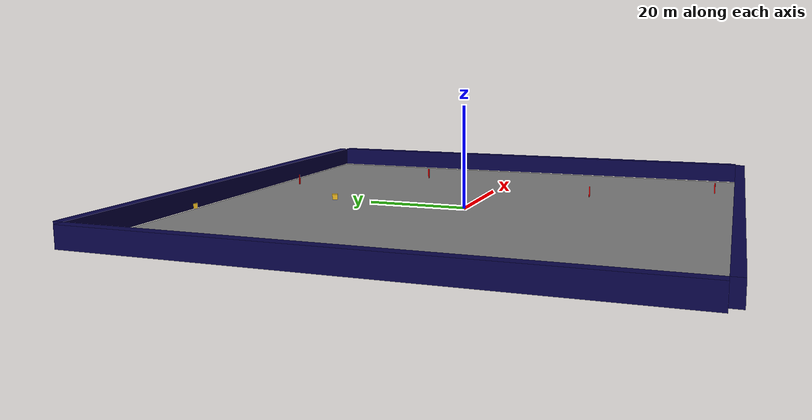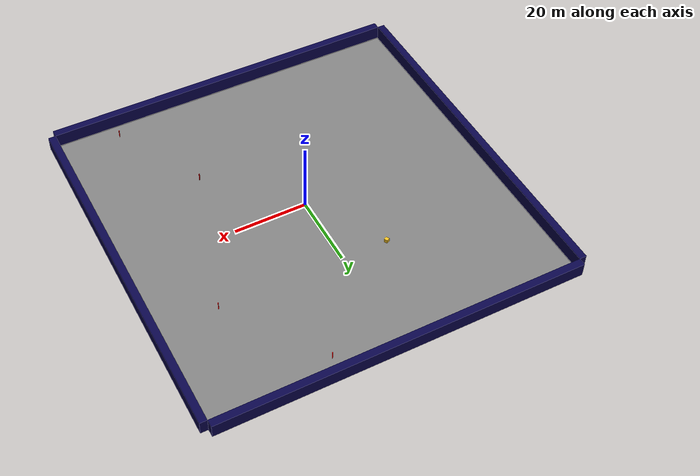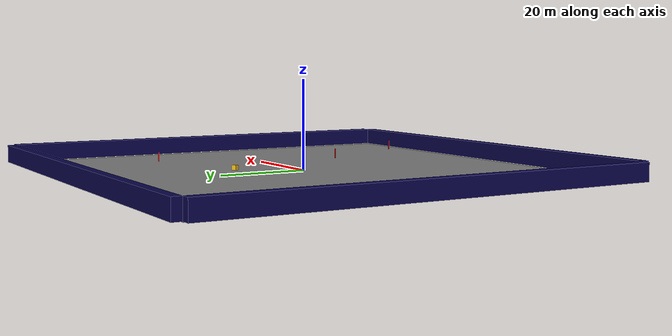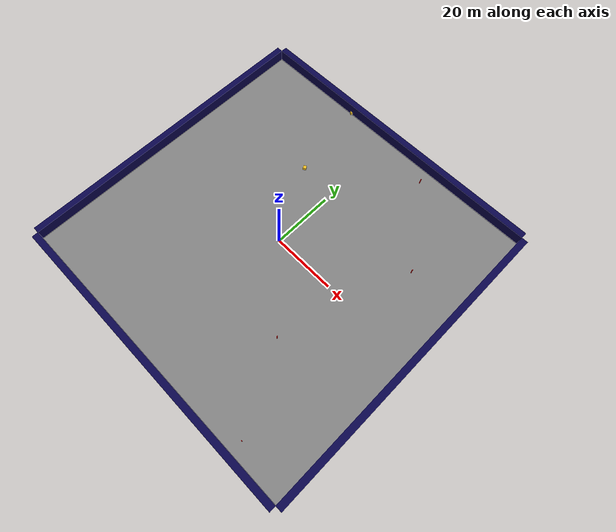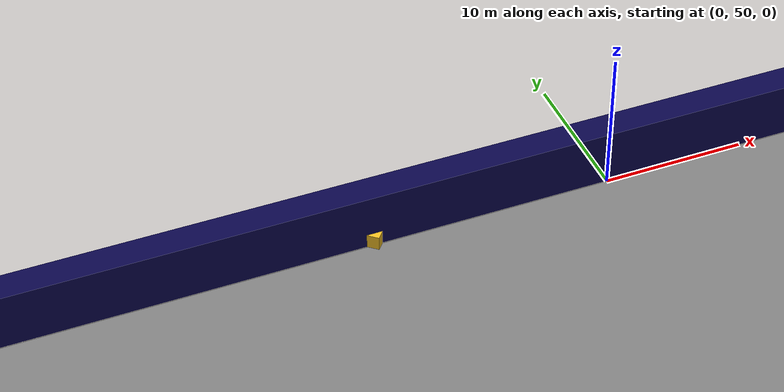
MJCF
<mujoco model="unnamed_model">
  <default>
    <default class="/" />
    <default class="border/" />
    <default class="border_1/" />
    <default class="border_2/" />
    <default class="border_3/" />
    <default class="placeholder/" />
    <default class="agent/" />
    <default class="tree0/" />
    <default class="tree1/" />
    <default class="tree2/" />
    <default class="tree3/" />
  </default>
  <worldbody>
    <body name="border/">
      <body name="border/border" pos="0 51 2">
        <geom name="border/border_geom" class="border/" type="box" size="50 1 2" rgba="0.035000000000000003 0.016 0.28999999999999998 1" />
      </body>
    </body>
    <body name="border_1/">
      <body name="border_1/border" pos="0 -51 2">
        <geom name="border_1/border_geom" class="border_1/" type="box" size="50 1 2" rgba="0.035000000000000003 0.016 0.28999999999999998 1" />
      </body>
    </body>
    <body name="border_2/">
      <body name="border_2/border" pos="51 0 2">
        <geom name="border_2/border_geom" class="border_2/" type="box" size="1 50 2" rgba="0.035000000000000003 0.016 0.28999999999999998 1" />
      </body>
    </body>
    <body name="border_3/">
      <body name="border_3/border" pos="-51 0 2">
        <geom name="border_3/border_geom" class="border_3/" type="box" size="1 50 2" rgba="0.035000000000000003 0.016 0.28999999999999998 1" />
      </body>
    </body>
    <body euler="0 0 -62.827825081752366" name="placeholder/">
      <joint name="placeholder/boxagent_freeJoint/" class="/" type="free" />
      <body name="placeholder/placeholder" pos="-25 0 3" euler="0 0 0">
        <geom name="placeholder/boxagent_geom" class="placeholder/" type="box" size="0.5 0.5 0.5" rgba="0.94899999999999995 0.74509999999999998 0.1333 1" euler="0 0 0" />
      </body>
    </body>
    <body euler="0 0 -130.45668100629405" name="agent/">
      <joint name="agent/boxagent_freeJoint/" class="/" type="free" />
      <body name="agent/agent" pos="-27.369800000000001 -45.211300000000001 0.5" euler="0 0 0">
        <geom name="agent/boxagent_geom" class="agent/" type="box" size="0.5 0.5 0.5" rgba="0.94899999999999995 0.74509999999999998 0.1333 1" euler="0 0 0" />
      </body>
    </body>
    <body name="tree0/">
      <body name="tree0/tree0" pos="16.453049999999998 45.587099999999992 0.10000000000000001" euler="0 0 159.66210650567251">
        <geom name="tree0/tree_geom" class="tree0/" type="box" size="0.10000000000000001 0.10000000000000001 2" rgba="1 0 0 1" />
      </body>
    </body>
    <body name="tree1/">
      <body name="tree1/tree1" pos="33.490449999999996 -45.976700000000001 0.10000000000000001" euler="0 0 -96.547426745634553">
        <geom name="tree1/tree_geom" class="tree1/" type="box" size="0.10000000000000001 0.10000000000000001 2" rgba="1 0 0 1" />
      </body>
    </body>
    <body name="tree2/">
      <body name="tree2/tree2" pos="33.9925 20.296400000000006 0.10000000000000001" euler="0 0 -113.09162318230999">
        <geom name="tree2/tree_geom" class="tree2/" type="box" size="0.10000000000000001 0.10000000000000001 2" rgba="1 0 0 1" />
      </body>
    </body>
    <body name="tree3/">
      <body name="tree3/tree3" pos="20.656999999999996 -20.970199999999998 0.10000000000000001" euler="0 0 -75.328113389488479">
        <geom name="tree3/tree_geom" class="tree3/" type="box" size="0.10000000000000001 0.10000000000000001 2" rgba="1 0 0 1" />
      </body>
    </body>
    <geom name="base_plane" class="/" type="plane" size="50 50 0.10000000000000001" />
  </worldbody>
</mujoco>
